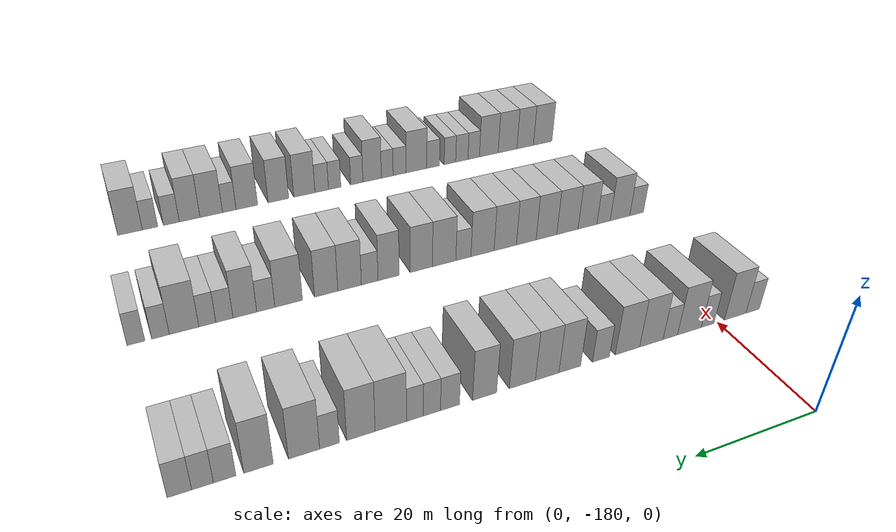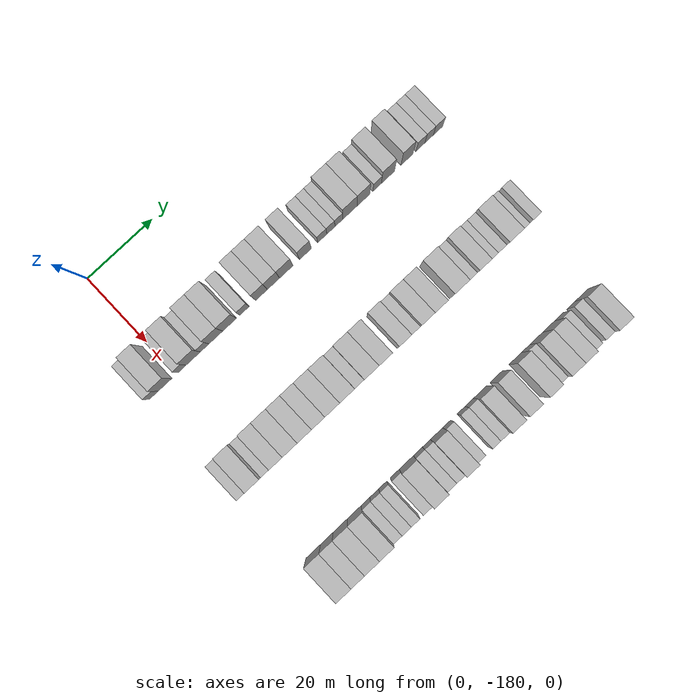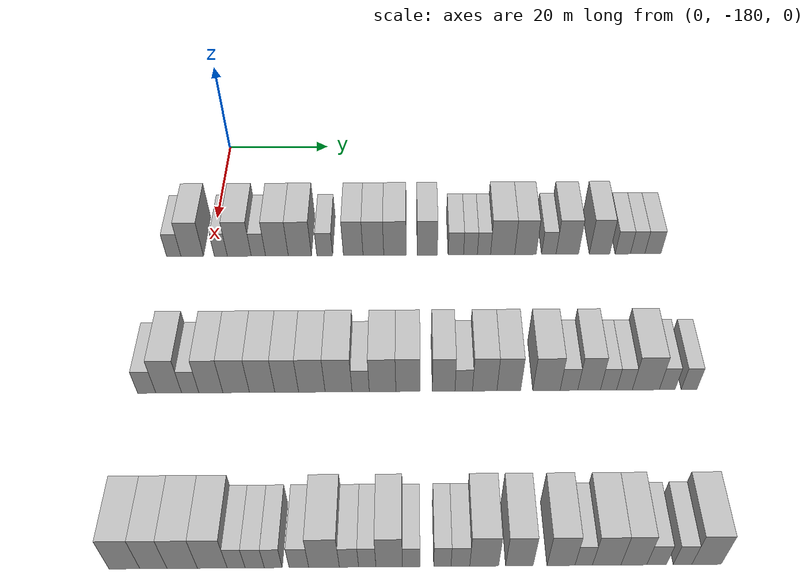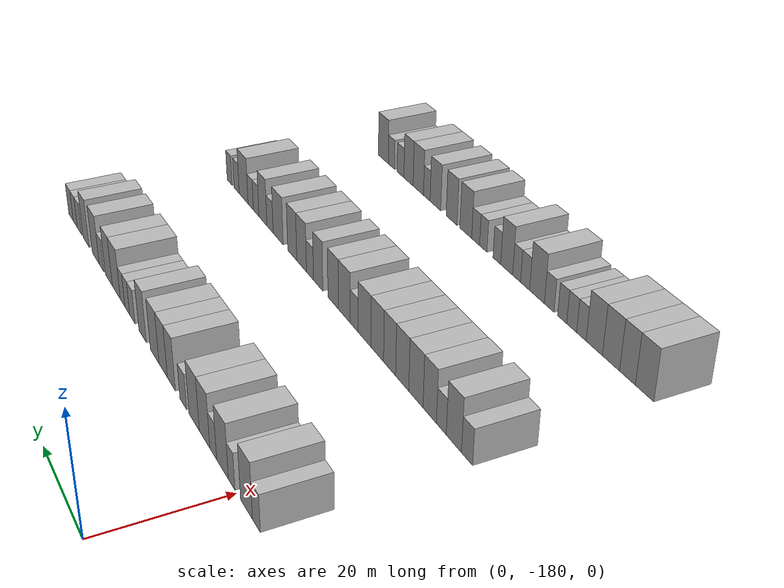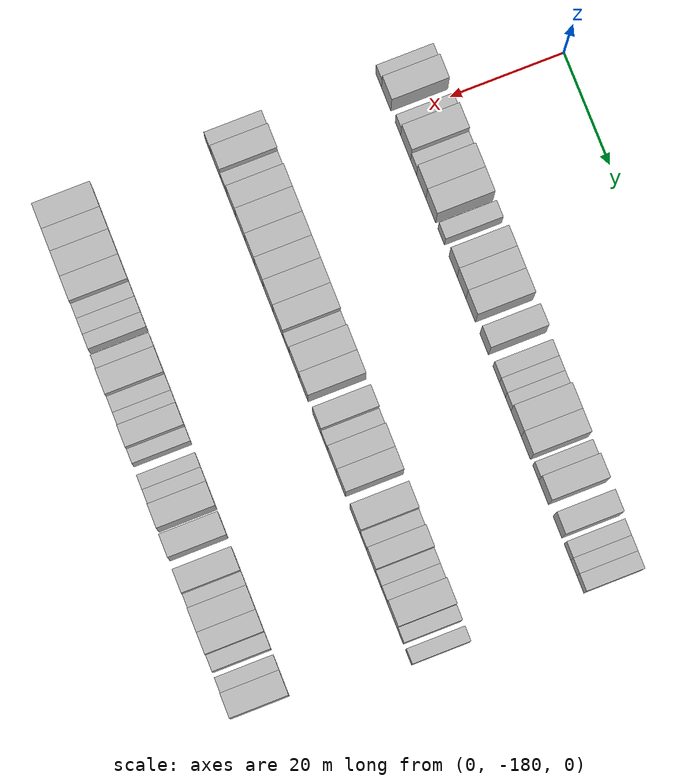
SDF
<sdf version="1.6">
 <world name="default">
  <model name="building_26">
   <static>1</static>
   <pose>25.0000 -186.8077 0 0.000000 0.000000 0.000000</pose>
   <link name="link">
    <pose>0 0 3.00 0 0 0</pose>
    <collision name="collision"><geometry><box><size>10.0000 2.6490 6.0000</size></box></geometry></collision>
    <visual name="visual">
     <cast_shadows>0</cast_shadows>
     <geometry><box><size>10.0000 2.6490 6.0000</size></box></geometry>
     <material>
      <script>
       <uri>model://HANNAS_wall/materials/scripts</uri>
       <uri>model://HANNAS_wall/materials/textures</uri>
       <name>vrc/HANNAS_wall</name>
      </script>
     </material>
    </visual>
   </link>
  </model>
  <model name="building_27">
   <static>1</static>
   <pose>25.0000 -183.4079 0 0.000000 0.000000 0.000000</pose>
   <link name="link">
    <pose>0 0 4.50 0 0 0</pose>
    <collision name="collision"><geometry><box><size>10.0000 4.1506 9.0000</size></box></geometry></collision>
    <visual name="visual">
     <cast_shadows>0</cast_shadows>
     <geometry><box><size>10.0000 4.1506 9.0000</size></box></geometry>
     <material>
      <script>
       <uri>model://HANNAS_wall/materials/scripts</uri>
       <uri>model://HANNAS_wall/materials/textures</uri>
       <name>vrc/HANNAS_wall</name>
      </script>
     </material>
    </visual>
   </link>
  </model>
  <model name="building_28">
   <static>1</static>
   <pose>25.0000 -178.1319 0 0.000000 0.000000 0.000000</pose>
   <link name="link">
    <pose>0 0 3.00 0 0 0</pose>
    <collision name="collision"><geometry><box><size>10.0000 2.4013 6.0000</size></box></geometry></collision>
    <visual name="visual">
     <cast_shadows>0</cast_shadows>
     <geometry><box><size>10.0000 2.4013 6.0000</size></box></geometry>
     <material>
      <script>
       <uri>model://HANNAS_wall/materials/scripts</uri>
       <uri>model://HANNAS_wall/materials/textures</uri>
       <name>vrc/HANNAS_wall</name>
      </script>
     </material>
    </visual>
   </link>
  </model>
  <model name="building_29">
   <static>1</static>
   <pose>25.0000 -174.7251 0 0.000000 0.000000 0.000000</pose>
   <link name="link">
    <pose>0 0 4.50 0 0 0</pose>
    <collision name="collision"><geometry><box><size>10.0000 4.4124 9.0000</size></box></geometry></collision>
    <visual name="visual">
     <cast_shadows>0</cast_shadows>
     <geometry><box><size>10.0000 4.4124 9.0000</size></box></geometry>
     <material>
      <script>
       <uri>model://HANNAS_wall/materials/scripts</uri>
       <uri>model://HANNAS_wall/materials/textures</uri>
       <name>vrc/HANNAS_wall</name>
      </script>
     </material>
    </visual>
   </link>
  </model>
  <model name="building_30">
   <static>1</static>
   <pose>25.0000 -171.2000 0 0.000000 0.000000 0.000000</pose>
   <link name="link">
    <pose>0 0 3.00 0 0 0</pose>
    <collision name="collision"><geometry><box><size>10.0000 2.6376 6.0000</size></box></geometry></collision>
    <visual name="visual">
     <cast_shadows>0</cast_shadows>
     <geometry><box><size>10.0000 2.6376 6.0000</size></box></geometry>
     <material>
      <script>
       <uri>model://HANNAS_wall/materials/scripts</uri>
       <uri>model://HANNAS_wall/materials/textures</uri>
       <name>vrc/HANNAS_wall</name>
      </script>
     </material>
    </visual>
   </link>
  </model>
  <model name="building_31">
   <static>1</static>
   <pose>25.0000 -167.7808 0 0.000000 0.000000 0.000000</pose>
   <link name="link">
    <pose>0 0 4.50 0 0 0</pose>
    <collision name="collision"><geometry><box><size>10.0000 4.2008 9.0000</size></box></geometry></collision>
    <visual name="visual">
     <cast_shadows>0</cast_shadows>
     <geometry><box><size>10.0000 4.2008 9.0000</size></box></geometry>
     <material>
      <script>
       <uri>model://HANNAS_wall/materials/scripts</uri>
       <uri>model://HANNAS_wall/materials/textures</uri>
       <name>vrc/HANNAS_wall</name>
      </script>
     </material>
    </visual>
   </link>
  </model>
  <model name="building_32">
   <static>1</static>
   <pose>25.0000 -163.5349 0 0.000000 0.000000 0.000000</pose>
   <link name="link">
    <pose>0 0 4.50 0 0 0</pose>
    <collision name="collision"><geometry><box><size>10.0000 4.2909 9.0000</size></box></geometry></collision>
    <visual name="visual">
     <cast_shadows>0</cast_shadows>
     <geometry><box><size>10.0000 4.2909 9.0000</size></box></geometry>
     <material>
      <script>
       <uri>model://HANNAS_wall/materials/scripts</uri>
       <uri>model://HANNAS_wall/materials/textures</uri>
       <name>vrc/HANNAS_wall</name>
      </script>
     </material>
    </visual>
   </link>
  </model>
  <model name="building_33">
   <static>1</static>
   <pose>25.0000 -158.9349 0 0.000000 0.000000 0.000000</pose>
   <link name="link">
    <pose>0 0 3.00 0 0 0</pose>
    <collision name="collision"><geometry><box><size>10.0000 2.9093 6.0000</size></box></geometry></collision>
    <visual name="visual">
     <cast_shadows>0</cast_shadows>
     <geometry><box><size>10.0000 2.9093 6.0000</size></box></geometry>
     <material>
      <script>
       <uri>model://HANNAS_wall/materials/scripts</uri>
       <uri>model://HANNAS_wall/materials/textures</uri>
       <name>vrc/HANNAS_wall</name>
      </script>
     </material>
    </visual>
   </link>
  </model>
  <model name="building_34">
   <static>1</static>
   <pose>25.0000 -153.6737 0 0.000000 0.000000 0.000000</pose>
   <link name="link">
    <pose>0 0 4.50 0 0 0</pose>
    <collision name="collision"><geometry><box><size>10.0000 3.6130 9.0000</size></box></geometry></collision>
    <visual name="visual">
     <cast_shadows>0</cast_shadows>
     <geometry><box><size>10.0000 3.6130 9.0000</size></box></geometry>
     <material>
      <script>
       <uri>model://HANNAS_wall/materials/scripts</uri>
       <uri>model://HANNAS_wall/materials/textures</uri>
       <name>vrc/HANNAS_wall</name>
      </script>
     </material>
    </visual>
   </link>
  </model>
  <model name="building_35">
   <static>1</static>
   <pose>25.0000 -149.9501 0 0.000000 0.000000 0.000000</pose>
   <link name="link">
    <pose>0 0 4.50 0 0 0</pose>
    <collision name="collision"><geometry><box><size>10.0000 3.8343 9.0000</size></box></geometry></collision>
    <visual name="visual">
     <cast_shadows>0</cast_shadows>
     <geometry><box><size>10.0000 3.8343 9.0000</size></box></geometry>
     <material>
      <script>
       <uri>model://HANNAS_wall/materials/scripts</uri>
       <uri>model://HANNAS_wall/materials/textures</uri>
       <name>vrc/HANNAS_wall</name>
      </script>
     </material>
    </visual>
   </link>
  </model>
  <model name="building_36">
   <static>1</static>
   <pose>25.0000 -145.9437 0 0.000000 0.000000 0.000000</pose>
   <link name="link">
    <pose>0 0 4.50 0 0 0</pose>
    <collision name="collision"><geometry><box><size>10.0000 4.1787 9.0000</size></box></geometry></collision>
    <visual name="visual">
     <cast_shadows>0</cast_shadows>
     <geometry><box><size>10.0000 4.1787 9.0000</size></box></geometry>
     <material>
      <script>
       <uri>model://HANNAS_wall/materials/scripts</uri>
       <uri>model://HANNAS_wall/materials/textures</uri>
       <name>vrc/HANNAS_wall</name>
      </script>
     </material>
    </visual>
   </link>
  </model>
  <model name="building_37">
   <static>1</static>
   <pose>25.0000 -139.9916 0 0.000000 0.000000 0.000000</pose>
   <link name="link">
    <pose>0 0 4.50 0 0 0</pose>
    <collision name="collision"><geometry><box><size>10.0000 3.7255 9.0000</size></box></geometry></collision>
    <visual name="visual">
     <cast_shadows>0</cast_shadows>
     <geometry><box><size>10.0000 3.7255 9.0000</size></box></geometry>
     <material>
      <script>
       <uri>model://HANNAS_wall/materials/scripts</uri>
       <uri>model://HANNAS_wall/materials/textures</uri>
       <name>vrc/HANNAS_wall</name>
      </script>
     </material>
    </visual>
   </link>
  </model>
  <model name="building_38">
   <static>1</static>
   <pose>25.0000 -134.7000 0 0.000000 0.000000 0.000000</pose>
   <link name="link">
    <pose>0 0 3.00 0 0 0</pose>
    <collision name="collision"><geometry><box><size>10.0000 2.8577 6.0000</size></box></geometry></collision>
    <visual name="visual">
     <cast_shadows>0</cast_shadows>
     <geometry><box><size>10.0000 2.8577 6.0000</size></box></geometry>
     <material>
      <script>
       <uri>model://HANNAS_wall/materials/scripts</uri>
       <uri>model://HANNAS_wall/materials/textures</uri>
       <name>vrc/HANNAS_wall</name>
      </script>
     </material>
    </visual>
   </link>
  </model>
  <model name="building_39">
   <static>1</static>
   <pose>25.0000 -131.9935 0 0.000000 0.000000 0.000000</pose>
   <link name="link">
    <pose>0 0 3.00 0 0 0</pose>
    <collision name="collision"><geometry><box><size>10.0000 2.5553 6.0000</size></box></geometry></collision>
    <visual name="visual">
     <cast_shadows>0</cast_shadows>
     <geometry><box><size>10.0000 2.5553 6.0000</size></box></geometry>
     <material>
      <script>
       <uri>model://HANNAS_wall/materials/scripts</uri>
       <uri>model://HANNAS_wall/materials/textures</uri>
       <name>vrc/HANNAS_wall</name>
      </script>
     </material>
    </visual>
   </link>
  </model>
  <model name="building_40">
   <static>1</static>
   <pose>25.0000 -129.4904 0 0.000000 0.000000 0.000000</pose>
   <link name="link">
    <pose>0 0 3.00 0 0 0</pose>
    <collision name="collision"><geometry><box><size>10.0000 2.4510 6.0000</size></box></geometry></collision>
    <visual name="visual">
     <cast_shadows>0</cast_shadows>
     <geometry><box><size>10.0000 2.4510 6.0000</size></box></geometry>
     <material>
      <script>
       <uri>model://HANNAS_wall/materials/scripts</uri>
       <uri>model://HANNAS_wall/materials/textures</uri>
       <name>vrc/HANNAS_wall</name>
      </script>
     </material>
    </visual>
   </link>
  </model>
  <model name="building_41">
   <static>1</static>
   <pose>25.0000 -126.0280 0 0.000000 0.000000 0.000000</pose>
   <link name="link">
    <pose>0 0 4.50 0 0 0</pose>
    <collision name="collision"><geometry><box><size>10.0000 4.4737 9.0000</size></box></geometry></collision>
    <visual name="visual">
     <cast_shadows>0</cast_shadows>
     <geometry><box><size>10.0000 4.4737 9.0000</size></box></geometry>
     <material>
      <script>
       <uri>model://HANNAS_wall/materials/scripts</uri>
       <uri>model://HANNAS_wall/materials/textures</uri>
       <name>vrc/HANNAS_wall</name>
      </script>
     </material>
    </visual>
   </link>
  </model>
  <model name="building_42">
   <static>1</static>
   <pose>25.0000 -121.8029 0 0.000000 0.000000 0.000000</pose>
   <link name="link">
    <pose>0 0 4.50 0 0 0</pose>
    <collision name="collision"><geometry><box><size>10.0000 3.9766 9.0000</size></box></geometry></collision>
    <visual name="visual">
     <cast_shadows>0</cast_shadows>
     <geometry><box><size>10.0000 3.9766 9.0000</size></box></geometry>
     <material>
      <script>
       <uri>model://HANNAS_wall/materials/scripts</uri>
       <uri>model://HANNAS_wall/materials/textures</uri>
       <name>vrc/HANNAS_wall</name>
      </script>
     </material>
    </visual>
   </link>
  </model>
  <model name="building_43">
   <static>1</static>
   <pose>25.0000 -117.4741 0 0.000000 0.000000 0.000000</pose>
   <link name="link">
    <pose>0 0 3.00 0 0 0</pose>
    <collision name="collision"><geometry><box><size>10.0000 2.6810 6.0000</size></box></geometry></collision>
    <visual name="visual">
     <cast_shadows>0</cast_shadows>
     <geometry><box><size>10.0000 2.6810 6.0000</size></box></geometry>
     <material>
      <script>
       <uri>model://HANNAS_wall/materials/scripts</uri>
       <uri>model://HANNAS_wall/materials/textures</uri>
       <name>vrc/HANNAS_wall</name>
      </script>
     </material>
    </visual>
   </link>
  </model>
  <model name="building_44">
   <static>1</static>
   <pose>25.0000 -114.0489 0 0.000000 0.000000 0.000000</pose>
   <link name="link">
    <pose>0 0 4.50 0 0 0</pose>
    <collision name="collision"><geometry><box><size>10.0000 4.1696 9.0000</size></box></geometry></collision>
    <visual name="visual">
     <cast_shadows>0</cast_shadows>
     <geometry><box><size>10.0000 4.1696 9.0000</size></box></geometry>
     <material>
      <script>
       <uri>model://HANNAS_wall/materials/scripts</uri>
       <uri>model://HANNAS_wall/materials/textures</uri>
       <name>vrc/HANNAS_wall</name>
      </script>
     </material>
    </visual>
   </link>
  </model>
  <model name="building_45">
   <static>1</static>
   <pose>25.0000 -108.0677 0 0.000000 0.000000 0.000000</pose>
   <link name="link">
    <pose>0 0 4.50 0 0 0</pose>
    <collision name="collision"><geometry><box><size>10.0000 3.7928 9.0000</size></box></geometry></collision>
    <visual name="visual">
     <cast_shadows>0</cast_shadows>
     <geometry><box><size>10.0000 3.7928 9.0000</size></box></geometry>
     <material>
      <script>
       <uri>model://HANNAS_wall/materials/scripts</uri>
       <uri>model://HANNAS_wall/materials/textures</uri>
       <name>vrc/HANNAS_wall</name>
      </script>
     </material>
    </visual>
   </link>
  </model>
  <model name="building_46">
   <static>1</static>
   <pose>25.0000 -103.7559 0 0.000000 0.000000 0.000000</pose>
   <link name="link">
    <pose>0 0 3.00 0 0 0</pose>
    <collision name="collision"><geometry><box><size>10.0000 2.8308 6.0000</size></box></geometry></collision>
    <visual name="visual">
     <cast_shadows>0</cast_shadows>
     <geometry><box><size>10.0000 2.8308 6.0000</size></box></geometry>
     <material>
      <script>
       <uri>model://HANNAS_wall/materials/scripts</uri>
       <uri>model://HANNAS_wall/materials/textures</uri>
       <name>vrc/HANNAS_wall</name>
      </script>
     </material>
    </visual>
   </link>
  </model>
  <model name="building_47">
   <static>1</static>
   <pose>25.0000 -101.0030 0 0.000000 0.000000 0.000000</pose>
   <link name="link">
    <pose>0 0 3.00 0 0 0</pose>
    <collision name="collision"><geometry><box><size>10.0000 2.6751 6.0000</size></box></geometry></collision>
    <visual name="visual">
     <cast_shadows>0</cast_shadows>
     <geometry><box><size>10.0000 2.6751 6.0000</size></box></geometry>
     <material>
      <script>
       <uri>model://HANNAS_wall/materials/scripts</uri>
       <uri>model://HANNAS_wall/materials/textures</uri>
       <name>vrc/HANNAS_wall</name>
      </script>
     </material>
    </visual>
   </link>
  </model>
  <model name="building_48">
   <static>1</static>
   <pose>25.0000 -98.1678 0 0.000000 0.000000 0.000000</pose>
   <link name="link">
    <pose>0 0 3.00 0 0 0</pose>
    <collision name="collision"><geometry><box><size>10.0000 2.9954 6.0000</size></box></geometry></collision>
    <visual name="visual">
     <cast_shadows>0</cast_shadows>
     <geometry><box><size>10.0000 2.9954 6.0000</size></box></geometry>
     <material>
      <script>
       <uri>model://HANNAS_wall/materials/scripts</uri>
       <uri>model://HANNAS_wall/materials/textures</uri>
       <name>vrc/HANNAS_wall</name>
      </script>
     </material>
    </visual>
   </link>
  </model>
  <model name="building_167">
   <static>1</static>
   <pose>55.0000 -186.5059 0 0.000000 0.000000 0.000000</pose>
   <link name="link">
    <pose>0 0 3.00 0 0 0</pose>
    <collision name="collision"><geometry><box><size>10.0000 2.9878 6.0000</size></box></geometry></collision>
    <visual name="visual">
     <cast_shadows>0</cast_shadows>
     <geometry><box><size>10.0000 2.9878 6.0000</size></box></geometry>
     <material>
      <script>
       <uri>model://HANNAS_wall/materials/scripts</uri>
       <uri>model://HANNAS_wall/materials/textures</uri>
       <name>vrc/HANNAS_wall</name>
      </script>
     </material>
    </visual>
   </link>
  </model>
  <model name="building_168">
   <static>1</static>
   <pose>55.0000 -182.9022 0 0.000000 0.000000 0.000000</pose>
   <link name="link">
    <pose>0 0 4.50 0 0 0</pose>
    <collision name="collision"><geometry><box><size>10.0000 4.2195 9.0000</size></box></geometry></collision>
    <visual name="visual">
     <cast_shadows>0</cast_shadows>
     <geometry><box><size>10.0000 4.2195 9.0000</size></box></geometry>
     <material>
      <script>
       <uri>model://HANNAS_wall/materials/scripts</uri>
       <uri>model://HANNAS_wall/materials/textures</uri>
       <name>vrc/HANNAS_wall</name>
      </script>
     </material>
    </visual>
   </link>
  </model>
  <model name="building_169">
   <static>1</static>
   <pose>55.0000 -179.3797 0 0.000000 0.000000 0.000000</pose>
   <link name="link">
    <pose>0 0 3.00 0 0 0</pose>
    <collision name="collision"><geometry><box><size>10.0000 2.8256 6.0000</size></box></geometry></collision>
    <visual name="visual">
     <cast_shadows>0</cast_shadows>
     <geometry><box><size>10.0000 2.8256 6.0000</size></box></geometry>
     <material>
      <script>
       <uri>model://HANNAS_wall/materials/scripts</uri>
       <uri>model://HANNAS_wall/materials/textures</uri>
       <name>vrc/HANNAS_wall</name>
      </script>
     </material>
    </visual>
   </link>
  </model>
  <model name="building_170">
   <static>1</static>
   <pose>55.0000 -175.9947 0 0.000000 0.000000 0.000000</pose>
   <link name="link">
    <pose>0 0 4.50 0 0 0</pose>
    <collision name="collision"><geometry><box><size>10.0000 3.9444 9.0000</size></box></geometry></collision>
    <visual name="visual">
     <cast_shadows>0</cast_shadows>
     <geometry><box><size>10.0000 3.9444 9.0000</size></box></geometry>
     <material>
      <script>
       <uri>model://HANNAS_wall/materials/scripts</uri>
       <uri>model://HANNAS_wall/materials/textures</uri>
       <name>vrc/HANNAS_wall</name>
      </script>
     </material>
    </visual>
   </link>
  </model>
  <model name="building_171">
   <static>1</static>
   <pose>55.0000 -171.8400 0 0.000000 0.000000 0.000000</pose>
   <link name="link">
    <pose>0 0 4.50 0 0 0</pose>
    <collision name="collision"><geometry><box><size>10.0000 4.3650 9.0000</size></box></geometry></collision>
    <visual name="visual">
     <cast_shadows>0</cast_shadows>
     <geometry><box><size>10.0000 4.3650 9.0000</size></box></geometry>
     <material>
      <script>
       <uri>model://HANNAS_wall/materials/scripts</uri>
       <uri>model://HANNAS_wall/materials/textures</uri>
       <name>vrc/HANNAS_wall</name>
      </script>
     </material>
    </visual>
   </link>
  </model>
  <model name="building_172">
   <static>1</static>
   <pose>55.0000 -167.5754 0 0.000000 0.000000 0.000000</pose>
   <link name="link">
    <pose>0 0 4.50 0 0 0</pose>
    <collision name="collision"><geometry><box><size>10.0000 4.1642 9.0000</size></box></geometry></collision>
    <visual name="visual">
     <cast_shadows>0</cast_shadows>
     <geometry><box><size>10.0000 4.1642 9.0000</size></box></geometry>
     <material>
      <script>
       <uri>model://HANNAS_wall/materials/scripts</uri>
       <uri>model://HANNAS_wall/materials/textures</uri>
       <name>vrc/HANNAS_wall</name>
      </script>
     </material>
    </visual>
   </link>
  </model>
  <model name="building_173">
   <static>1</static>
   <pose>55.0000 -163.5399 0 0.000000 0.000000 0.000000</pose>
   <link name="link">
    <pose>0 0 4.50 0 0 0</pose>
    <collision name="collision"><geometry><box><size>10.0000 3.9069 9.0000</size></box></geometry></collision>
    <visual name="visual">
     <cast_shadows>0</cast_shadows>
     <geometry><box><size>10.0000 3.9069 9.0000</size></box></geometry>
     <material>
      <script>
       <uri>model://HANNAS_wall/materials/scripts</uri>
       <uri>model://HANNAS_wall/materials/textures</uri>
       <name>vrc/HANNAS_wall</name>
      </script>
     </material>
    </visual>
   </link>
  </model>
  <model name="building_174">
   <static>1</static>
   <pose>55.0000 -159.4107 0 0.000000 0.000000 0.000000</pose>
   <link name="link">
    <pose>0 0 4.50 0 0 0</pose>
    <collision name="collision"><geometry><box><size>10.0000 4.3513 9.0000</size></box></geometry></collision>
    <visual name="visual">
     <cast_shadows>0</cast_shadows>
     <geometry><box><size>10.0000 4.3513 9.0000</size></box></geometry>
     <material>
      <script>
       <uri>model://HANNAS_wall/materials/scripts</uri>
       <uri>model://HANNAS_wall/materials/textures</uri>
       <name>vrc/HANNAS_wall</name>
      </script>
     </material>
    </visual>
   </link>
  </model>
  <model name="building_175">
   <static>1</static>
   <pose>55.0000 -155.0255 0 0.000000 0.000000 0.000000</pose>
   <link name="link">
    <pose>0 0 4.50 0 0 0</pose>
    <collision name="collision"><geometry><box><size>10.0000 4.4191 9.0000</size></box></geometry></collision>
    <visual name="visual">
     <cast_shadows>0</cast_shadows>
     <geometry><box><size>10.0000 4.4191 9.0000</size></box></geometry>
     <material>
      <script>
       <uri>model://HANNAS_wall/materials/scripts</uri>
       <uri>model://HANNAS_wall/materials/textures</uri>
       <name>vrc/HANNAS_wall</name>
      </script>
     </material>
    </visual>
   </link>
  </model>
  <model name="building_176">
   <static>1</static>
   <pose>55.0000 -151.3942 0 0.000000 0.000000 0.000000</pose>
   <link name="link">
    <pose>0 0 3.00 0 0 0</pose>
    <collision name="collision"><geometry><box><size>10.0000 2.8435 6.0000</size></box></geometry></collision>
    <visual name="visual">
     <cast_shadows>0</cast_shadows>
     <geometry><box><size>10.0000 2.8435 6.0000</size></box></geometry>
     <material>
      <script>
       <uri>model://HANNAS_wall/materials/scripts</uri>
       <uri>model://HANNAS_wall/materials/textures</uri>
       <name>vrc/HANNAS_wall</name>
      </script>
     </material>
    </visual>
   </link>
  </model>
  <model name="building_177">
   <static>1</static>
   <pose>55.0000 -147.7896 0 0.000000 0.000000 0.000000</pose>
   <link name="link">
    <pose>0 0 4.50 0 0 0</pose>
    <collision name="collision"><geometry><box><size>10.0000 4.3657 9.0000</size></box></geometry></collision>
    <visual name="visual">
     <cast_shadows>0</cast_shadows>
     <geometry><box><size>10.0000 4.3657 9.0000</size></box></geometry>
     <material>
      <script>
       <uri>model://HANNAS_wall/materials/scripts</uri>
       <uri>model://HANNAS_wall/materials/textures</uri>
       <name>vrc/HANNAS_wall</name>
      </script>
     </material>
    </visual>
   </link>
  </model>
  <model name="building_178">
   <static>1</static>
   <pose>55.0000 -143.6169 0 0.000000 0.000000 0.000000</pose>
   <link name="link">
    <pose>0 0 4.50 0 0 0</pose>
    <collision name="collision"><geometry><box><size>10.0000 3.9798 9.0000</size></box></geometry></collision>
    <visual name="visual">
     <cast_shadows>0</cast_shadows>
     <geometry><box><size>10.0000 3.9798 9.0000</size></box></geometry>
     <material>
      <script>
       <uri>model://HANNAS_wall/materials/scripts</uri>
       <uri>model://HANNAS_wall/materials/textures</uri>
       <name>vrc/HANNAS_wall</name>
      </script>
     </material>
    </visual>
   </link>
  </model>
  <model name="building_179">
   <static>1</static>
   <pose>55.0000 -137.7647 0 0.000000 0.000000 0.000000</pose>
   <link name="link">
    <pose>0 0 4.50 0 0 0</pose>
    <collision name="collision"><geometry><box><size>10.0000 3.7246 9.0000</size></box></geometry></collision>
    <visual name="visual">
     <cast_shadows>0</cast_shadows>
     <geometry><box><size>10.0000 3.7246 9.0000</size></box></geometry>
     <material>
      <script>
       <uri>model://HANNAS_wall/materials/scripts</uri>
       <uri>model://HANNAS_wall/materials/textures</uri>
       <name>vrc/HANNAS_wall</name>
      </script>
     </material>
    </visual>
   </link>
  </model>
  <model name="building_180">
   <static>1</static>
   <pose>55.0000 -134.4614 0 0.000000 0.000000 0.000000</pose>
   <link name="link">
    <pose>0 0 3.00 0 0 0</pose>
    <collision name="collision"><geometry><box><size>10.0000 2.8820 6.0000</size></box></geometry></collision>
    <visual name="visual">
     <cast_shadows>0</cast_shadows>
     <geometry><box><size>10.0000 2.8820 6.0000</size></box></geometry>
     <material>
      <script>
       <uri>model://HANNAS_wall/materials/scripts</uri>
       <uri>model://HANNAS_wall/materials/textures</uri>
       <name>vrc/HANNAS_wall</name>
      </script>
     </material>
    </visual>
   </link>
  </model>
  <model name="building_181">
   <static>1</static>
   <pose>55.0000 -131.0078 0 0.000000 0.000000 0.000000</pose>
   <link name="link">
    <pose>0 0 4.50 0 0 0</pose>
    <collision name="collision"><geometry><box><size>10.0000 4.0253 9.0000</size></box></geometry></collision>
    <visual name="visual">
     <cast_shadows>0</cast_shadows>
     <geometry><box><size>10.0000 4.0253 9.0000</size></box></geometry>
     <material>
      <script>
       <uri>model://HANNAS_wall/materials/scripts</uri>
       <uri>model://HANNAS_wall/materials/textures</uri>
       <name>vrc/HANNAS_wall</name>
      </script>
     </material>
    </visual>
   </link>
  </model>
  <model name="building_182">
   <static>1</static>
   <pose>55.0000 -127.0380 0 0.000000 0.000000 0.000000</pose>
   <link name="link">
    <pose>0 0 4.50 0 0 0</pose>
    <collision name="collision"><geometry><box><size>10.0000 3.9142 9.0000</size></box></geometry></collision>
    <visual name="visual">
     <cast_shadows>0</cast_shadows>
     <geometry><box><size>10.0000 3.9142 9.0000</size></box></geometry>
     <material>
      <script>
       <uri>model://HANNAS_wall/materials/scripts</uri>
       <uri>model://HANNAS_wall/materials/textures</uri>
       <name>vrc/HANNAS_wall</name>
      </script>
     </material>
    </visual>
   </link>
  </model>
  <model name="building_183">
   <static>1</static>
   <pose>55.0000 -120.8321 0 0.000000 0.000000 0.000000</pose>
   <link name="link">
    <pose>0 0 4.50 0 0 0</pose>
    <collision name="collision"><geometry><box><size>10.0000 4.4977 9.0000</size></box></geometry></collision>
    <visual name="visual">
     <cast_shadows>0</cast_shadows>
     <geometry><box><size>10.0000 4.4977 9.0000</size></box></geometry>
     <material>
      <script>
       <uri>model://HANNAS_wall/materials/scripts</uri>
       <uri>model://HANNAS_wall/materials/textures</uri>
       <name>vrc/HANNAS_wall</name>
      </script>
     </material>
    </visual>
   </link>
  </model>
  <model name="building_184">
   <static>1</static>
   <pose>55.0000 -117.1335 0 0.000000 0.000000 0.000000</pose>
   <link name="link">
    <pose>0 0 3.00 0 0 0</pose>
    <collision name="collision"><geometry><box><size>10.0000 2.8994 6.0000</size></box></geometry></collision>
    <visual name="visual">
     <cast_shadows>0</cast_shadows>
     <geometry><box><size>10.0000 2.8994 6.0000</size></box></geometry>
     <material>
      <script>
       <uri>model://HANNAS_wall/materials/scripts</uri>
       <uri>model://HANNAS_wall/materials/textures</uri>
       <name>vrc/HANNAS_wall</name>
      </script>
     </material>
    </visual>
   </link>
  </model>
  <model name="building_185">
   <static>1</static>
   <pose>55.0000 -113.8133 0 0.000000 0.000000 0.000000</pose>
   <link name="link">
    <pose>0 0 4.50 0 0 0</pose>
    <collision name="collision"><geometry><box><size>10.0000 3.7410 9.0000</size></box></geometry></collision>
    <visual name="visual">
     <cast_shadows>0</cast_shadows>
     <geometry><box><size>10.0000 3.7410 9.0000</size></box></geometry>
     <material>
      <script>
       <uri>model://HANNAS_wall/materials/scripts</uri>
       <uri>model://HANNAS_wall/materials/textures</uri>
       <name>vrc/HANNAS_wall</name>
      </script>
     </material>
    </visual>
   </link>
  </model>
  <model name="building_186">
   <static>1</static>
   <pose>55.0000 -110.6123 0 0.000000 0.000000 0.000000</pose>
   <link name="link">
    <pose>0 0 3.00 0 0 0</pose>
    <collision name="collision"><geometry><box><size>10.0000 2.6611 6.0000</size></box></geometry></collision>
    <visual name="visual">
     <cast_shadows>0</cast_shadows>
     <geometry><box><size>10.0000 2.6611 6.0000</size></box></geometry>
     <material>
      <script>
       <uri>model://HANNAS_wall/materials/scripts</uri>
       <uri>model://HANNAS_wall/materials/textures</uri>
       <name>vrc/HANNAS_wall</name>
      </script>
     </material>
    </visual>
   </link>
  </model>
  <model name="building_187">
   <static>1</static>
   <pose>55.0000 -107.9812 0 0.000000 0.000000 0.000000</pose>
   <link name="link">
    <pose>0 0 3.00 0 0 0</pose>
    <collision name="collision"><geometry><box><size>10.0000 2.6011 6.0000</size></box></geometry></collision>
    <visual name="visual">
     <cast_shadows>0</cast_shadows>
     <geometry><box><size>10.0000 2.6011 6.0000</size></box></geometry>
     <material>
      <script>
       <uri>model://HANNAS_wall/materials/scripts</uri>
       <uri>model://HANNAS_wall/materials/textures</uri>
       <name>vrc/HANNAS_wall</name>
      </script>
     </material>
    </visual>
   </link>
  </model>
  <model name="building_188">
   <static>1</static>
   <pose>55.0000 -104.4562 0 0.000000 0.000000 0.000000</pose>
   <link name="link">
    <pose>0 0 4.50 0 0 0</pose>
    <collision name="collision"><geometry><box><size>10.0000 4.4488 9.0000</size></box></geometry></collision>
    <visual name="visual">
     <cast_shadows>0</cast_shadows>
     <geometry><box><size>10.0000 4.4488 9.0000</size></box></geometry>
     <material>
      <script>
       <uri>model://HANNAS_wall/materials/scripts</uri>
       <uri>model://HANNAS_wall/materials/textures</uri>
       <name>vrc/HANNAS_wall</name>
      </script>
     </material>
    </visual>
   </link>
  </model>
  <model name="building_189">
   <static>1</static>
   <pose>55.0000 -100.9292 0 0.000000 0.000000 0.000000</pose>
   <link name="link">
    <pose>0 0 3.00 0 0 0</pose>
    <collision name="collision"><geometry><box><size>10.0000 2.6051 6.0000</size></box></geometry></collision>
    <visual name="visual">
     <cast_shadows>0</cast_shadows>
     <geometry><box><size>10.0000 2.6051 6.0000</size></box></geometry>
     <material>
      <script>
       <uri>model://HANNAS_wall/materials/scripts</uri>
       <uri>model://HANNAS_wall/materials/textures</uri>
       <name>vrc/HANNAS_wall</name>
      </script>
     </material>
    </visual>
   </link>
  </model>
  <model name="building_190">
   <static>1</static>
   <pose>55.0000 -97.3282 0 0.000000 0.000000 0.000000</pose>
   <link name="link">
    <pose>0 0 3.00 0 0 0</pose>
    <collision name="collision"><geometry><box><size>10.0000 2.5970 6.0000</size></box></geometry></collision>
    <visual name="visual">
     <cast_shadows>0</cast_shadows>
     <geometry><box><size>10.0000 2.5970 6.0000</size></box></geometry>
     <material>
      <script>
       <uri>model://HANNAS_wall/materials/scripts</uri>
       <uri>model://HANNAS_wall/materials/textures</uri>
       <name>vrc/HANNAS_wall</name>
      </script>
     </material>
    </visual>
   </link>
  </model>
  <model name="building_313">
   <static>1</static>
   <pose>85.0000 -184.4066 0 0.000000 0.000000 0.000000</pose>
   <link name="link">
    <pose>0 0 4.50 0 0 0</pose>
    <collision name="collision"><geometry><box><size>10.0000 4.4180 9.0000</size></box></geometry></collision>
    <visual name="visual">
     <cast_shadows>0</cast_shadows>
     <geometry><box><size>10.0000 4.4180 9.0000</size></box></geometry>
     <material>
      <script>
       <uri>model://HANNAS_wall/materials/scripts</uri>
       <uri>model://HANNAS_wall/materials/textures</uri>
       <name>vrc/HANNAS_wall</name>
      </script>
     </material>
    </visual>
   </link>
  </model>
  <model name="building_314">
   <static>1</static>
   <pose>85.0000 -180.2527 0 0.000000 0.000000 0.000000</pose>
   <link name="link">
    <pose>0 0 4.50 0 0 0</pose>
    <collision name="collision"><geometry><box><size>10.0000 3.8898 9.0000</size></box></geometry></collision>
    <visual name="visual">
     <cast_shadows>0</cast_shadows>
     <geometry><box><size>10.0000 3.8898 9.0000</size></box></geometry>
     <material>
      <script>
       <uri>model://HANNAS_wall/materials/scripts</uri>
       <uri>model://HANNAS_wall/materials/textures</uri>
       <name>vrc/HANNAS_wall</name>
      </script>
     </material>
    </visual>
   </link>
  </model>
  <model name="building_315">
   <static>1</static>
   <pose>85.0000 -176.1225 0 0.000000 0.000000 0.000000</pose>
   <link name="link">
    <pose>0 0 4.50 0 0 0</pose>
    <collision name="collision"><geometry><box><size>10.0000 4.3707 9.0000</size></box></geometry></collision>
    <visual name="visual">
     <cast_shadows>0</cast_shadows>
     <geometry><box><size>10.0000 4.3707 9.0000</size></box></geometry>
     <material>
      <script>
       <uri>model://HANNAS_wall/materials/scripts</uri>
       <uri>model://HANNAS_wall/materials/textures</uri>
       <name>vrc/HANNAS_wall</name>
      </script>
     </material>
    </visual>
   </link>
  </model>
  <model name="building_316">
   <static>1</static>
   <pose>85.0000 -171.7977 0 0.000000 0.000000 0.000000</pose>
   <link name="link">
    <pose>0 0 4.50 0 0 0</pose>
    <collision name="collision"><geometry><box><size>10.0000 4.2789 9.0000</size></box></geometry></collision>
    <visual name="visual">
     <cast_shadows>0</cast_shadows>
     <geometry><box><size>10.0000 4.2789 9.0000</size></box></geometry>
     <material>
      <script>
       <uri>model://HANNAS_wall/materials/scripts</uri>
       <uri>model://HANNAS_wall/materials/textures</uri>
       <name>vrc/HANNAS_wall</name>
      </script>
     </material>
    </visual>
   </link>
  </model>
  <model name="building_317">
   <static>1</static>
   <pose>85.0000 -168.3667 0 0.000000 0.000000 0.000000</pose>
   <link name="link">
    <pose>0 0 3.00 0 0 0</pose>
    <collision name="collision"><geometry><box><size>10.0000 2.5830 6.0000</size></box></geometry></collision>
    <visual name="visual">
     <cast_shadows>0</cast_shadows>
     <geometry><box><size>10.0000 2.5830 6.0000</size></box></geometry>
     <material>
      <script>
       <uri>model://HANNAS_wall/materials/scripts</uri>
       <uri>model://HANNAS_wall/materials/textures</uri>
       <name>vrc/HANNAS_wall</name>
      </script>
     </material>
    </visual>
   </link>
  </model>
  <model name="building_318">
   <static>1</static>
   <pose>85.0000 -165.7045 0 0.000000 0.000000 0.000000</pose>
   <link name="link">
    <pose>0 0 3.00 0 0 0</pose>
    <collision name="collision"><geometry><box><size>10.0000 2.7415 6.0000</size></box></geometry></collision>
    <visual name="visual">
     <cast_shadows>0</cast_shadows>
     <geometry><box><size>10.0000 2.7415 6.0000</size></box></geometry>
     <material>
      <script>
       <uri>model://HANNAS_wall/materials/scripts</uri>
       <uri>model://HANNAS_wall/materials/textures</uri>
       <name>vrc/HANNAS_wall</name>
      </script>
     </material>
    </visual>
   </link>
  </model>
  <model name="building_319">
   <static>1</static>
   <pose>85.0000 -163.0470 0 0.000000 0.000000 0.000000</pose>
   <link name="link">
    <pose>0 0 3.00 0 0 0</pose>
    <collision name="collision"><geometry><box><size>10.0000 2.5734 6.0000</size></box></geometry></collision>
    <visual name="visual">
     <cast_shadows>0</cast_shadows>
     <geometry><box><size>10.0000 2.5734 6.0000</size></box></geometry>
     <material>
      <script>
       <uri>model://HANNAS_wall/materials/scripts</uri>
       <uri>model://HANNAS_wall/materials/textures</uri>
       <name>vrc/HANNAS_wall</name>
      </script>
     </material>
    </visual>
   </link>
  </model>
  <model name="building_320">
   <static>1</static>
   <pose>85.0000 -159.3577 0 0.000000 0.000000 0.000000</pose>
   <link name="link">
    <pose>0 0 3.00 0 0 0</pose>
    <collision name="collision"><geometry><box><size>10.0000 2.8051 6.0000</size></box></geometry></collision>
    <visual name="visual">
     <cast_shadows>0</cast_shadows>
     <geometry><box><size>10.0000 2.8051 6.0000</size></box></geometry>
     <material>
      <script>
       <uri>model://HANNAS_wall/materials/scripts</uri>
       <uri>model://HANNAS_wall/materials/textures</uri>
       <name>vrc/HANNAS_wall</name>
      </script>
     </material>
    </visual>
   </link>
  </model>
  <model name="building_321">
   <static>1</static>
   <pose>85.0000 -155.7549 0 0.000000 0.000000 0.000000</pose>
   <link name="link">
    <pose>0 0 4.50 0 0 0</pose>
    <collision name="collision"><geometry><box><size>10.0000 4.4004 9.0000</size></box></geometry></collision>
    <visual name="visual">
     <cast_shadows>0</cast_shadows>
     <geometry><box><size>10.0000 4.4004 9.0000</size></box></geometry>
     <material>
      <script>
       <uri>model://HANNAS_wall/materials/scripts</uri>
       <uri>model://HANNAS_wall/materials/textures</uri>
       <name>vrc/HANNAS_wall</name>
      </script>
     </material>
    </visual>
   </link>
  </model>
  <model name="building_322">
   <static>1</static>
   <pose>85.0000 -152.1681 0 0.000000 0.000000 0.000000</pose>
   <link name="link">
    <pose>0 0 3.00 0 0 0</pose>
    <collision name="collision"><geometry><box><size>10.0000 2.7733 6.0000</size></box></geometry></collision>
    <visual name="visual">
     <cast_shadows>0</cast_shadows>
     <geometry><box><size>10.0000 2.7733 6.0000</size></box></geometry>
     <material>
      <script>
       <uri>model://HANNAS_wall/materials/scripts</uri>
       <uri>model://HANNAS_wall/materials/textures</uri>
       <name>vrc/HANNAS_wall</name>
      </script>
     </material>
    </visual>
   </link>
  </model>
  <model name="building_323">
   <static>1</static>
   <pose>85.0000 -149.5393 0 0.000000 0.000000 0.000000</pose>
   <link name="link">
    <pose>0 0 3.00 0 0 0</pose>
    <collision name="collision"><geometry><box><size>10.0000 2.4843 6.0000</size></box></geometry></collision>
    <visual name="visual">
     <cast_shadows>0</cast_shadows>
     <geometry><box><size>10.0000 2.4843 6.0000</size></box></geometry>
     <material>
      <script>
       <uri>model://HANNAS_wall/materials/scripts</uri>
       <uri>model://HANNAS_wall/materials/textures</uri>
       <name>vrc/HANNAS_wall</name>
      </script>
     </material>
    </visual>
   </link>
  </model>
  <model name="building_324">
   <static>1</static>
   <pose>85.0000 -146.3908 0 0.000000 0.000000 0.000000</pose>
   <link name="link">
    <pose>0 0 4.50 0 0 0</pose>
    <collision name="collision"><geometry><box><size>10.0000 3.8126 9.0000</size></box></geometry></collision>
    <visual name="visual">
     <cast_shadows>0</cast_shadows>
     <geometry><box><size>10.0000 3.8126 9.0000</size></box></geometry>
     <material>
      <script>
       <uri>model://HANNAS_wall/materials/scripts</uri>
       <uri>model://HANNAS_wall/materials/textures</uri>
       <name>vrc/HANNAS_wall</name>
      </script>
     </material>
    </visual>
   </link>
  </model>
  <model name="building_325">
   <static>1</static>
   <pose>85.0000 -143.2366 0 0.000000 0.000000 0.000000</pose>
   <link name="link">
    <pose>0 0 3.00 0 0 0</pose>
    <collision name="collision"><geometry><box><size>10.0000 2.4958 6.0000</size></box></geometry></collision>
    <visual name="visual">
     <cast_shadows>0</cast_shadows>
     <geometry><box><size>10.0000 2.4958 6.0000</size></box></geometry>
     <material>
      <script>
       <uri>model://HANNAS_wall/materials/scripts</uri>
       <uri>model://HANNAS_wall/materials/textures</uri>
       <name>vrc/HANNAS_wall</name>
      </script>
     </material>
    </visual>
   </link>
  </model>
  <model name="building_326">
   <static>1</static>
   <pose>85.0000 -138.7464 0 0.000000 0.000000 0.000000</pose>
   <link name="link">
    <pose>0 0 3.00 0 0 0</pose>
    <collision name="collision"><geometry><box><size>10.0000 2.4848 6.0000</size></box></geometry></collision>
    <visual name="visual">
     <cast_shadows>0</cast_shadows>
     <geometry><box><size>10.0000 2.4848 6.0000</size></box></geometry>
     <material>
      <script>
       <uri>model://HANNAS_wall/materials/scripts</uri>
       <uri>model://HANNAS_wall/materials/textures</uri>
       <name>vrc/HANNAS_wall</name>
      </script>
     </material>
    </visual>
   </link>
  </model>
  <model name="building_327">
   <static>1</static>
   <pose>85.0000 -136.1541 0 0.000000 0.000000 0.000000</pose>
   <link name="link">
    <pose>0 0 3.00 0 0 0</pose>
    <collision name="collision"><geometry><box><size>10.0000 2.6997 6.0000</size></box></geometry></collision>
    <visual name="visual">
     <cast_shadows>0</cast_shadows>
     <geometry><box><size>10.0000 2.6997 6.0000</size></box></geometry>
     <material>
      <script>
       <uri>model://HANNAS_wall/materials/scripts</uri>
       <uri>model://HANNAS_wall/materials/textures</uri>
       <name>vrc/HANNAS_wall</name>
      </script>
     </material>
    </visual>
   </link>
  </model>
  <model name="building_328">
   <static>1</static>
   <pose>85.0000 -132.7286 0 0.000000 0.000000 0.000000</pose>
   <link name="link">
    <pose>0 0 4.50 0 0 0</pose>
    <collision name="collision"><geometry><box><size>10.0000 4.1511 9.0000</size></box></geometry></collision>
    <visual name="visual">
     <cast_shadows>0</cast_shadows>
     <geometry><box><size>10.0000 4.1511 9.0000</size></box></geometry>
     <material>
      <script>
       <uri>model://HANNAS_wall/materials/scripts</uri>
       <uri>model://HANNAS_wall/materials/textures</uri>
       <name>vrc/HANNAS_wall</name>
      </script>
     </material>
    </visual>
   </link>
  </model>
  <model name="building_329">
   <static>1</static>
   <pose>85.0000 -127.6685 0 0.000000 0.000000 0.000000</pose>
   <link name="link">
    <pose>0 0 4.50 0 0 0</pose>
    <collision name="collision"><geometry><box><size>10.0000 3.9693 9.0000</size></box></geometry></collision>
    <visual name="visual">
     <cast_shadows>0</cast_shadows>
     <geometry><box><size>10.0000 3.9693 9.0000</size></box></geometry>
     <material>
      <script>
       <uri>model://HANNAS_wall/materials/scripts</uri>
       <uri>model://HANNAS_wall/materials/textures</uri>
       <name>vrc/HANNAS_wall</name>
      </script>
     </material>
    </visual>
   </link>
  </model>
  <model name="building_330">
   <static>1</static>
   <pose>85.0000 -121.6639 0 0.000000 0.000000 0.000000</pose>
   <link name="link">
    <pose>0 0 4.50 0 0 0</pose>
    <collision name="collision"><geometry><box><size>10.0000 4.0398 9.0000</size></box></geometry></collision>
    <visual name="visual">
     <cast_shadows>0</cast_shadows>
     <geometry><box><size>10.0000 4.0398 9.0000</size></box></geometry>
     <material>
      <script>
       <uri>model://HANNAS_wall/materials/scripts</uri>
       <uri>model://HANNAS_wall/materials/textures</uri>
       <name>vrc/HANNAS_wall</name>
      </script>
     </material>
    </visual>
   </link>
  </model>
  <model name="building_331">
   <static>1</static>
   <pose>85.0000 -118.3862 0 0.000000 0.000000 0.000000</pose>
   <link name="link">
    <pose>0 0 3.00 0 0 0</pose>
    <collision name="collision"><geometry><box><size>10.0000 2.5156 6.0000</size></box></geometry></collision>
    <visual name="visual">
     <cast_shadows>0</cast_shadows>
     <geometry><box><size>10.0000 2.5156 6.0000</size></box></geometry>
     <material>
      <script>
       <uri>model://HANNAS_wall/materials/scripts</uri>
       <uri>model://HANNAS_wall/materials/textures</uri>
       <name>vrc/HANNAS_wall</name>
      </script>
     </material>
    </visual>
   </link>
  </model>
  <model name="building_332">
   <static>1</static>
   <pose>85.0000 -115.0694 0 0.000000 0.000000 0.000000</pose>
   <link name="link">
    <pose>0 0 4.50 0 0 0</pose>
    <collision name="collision"><geometry><box><size>10.0000 4.1180 9.0000</size></box></geometry></collision>
    <visual name="visual">
     <cast_shadows>0</cast_shadows>
     <geometry><box><size>10.0000 4.1180 9.0000</size></box></geometry>
     <material>
      <script>
       <uri>model://HANNAS_wall/materials/scripts</uri>
       <uri>model://HANNAS_wall/materials/textures</uri>
       <name>vrc/HANNAS_wall</name>
      </script>
     </material>
    </visual>
   </link>
  </model>
  <model name="building_333">
   <static>1</static>
   <pose>85.0000 -111.1511 0 0.000000 0.000000 0.000000</pose>
   <link name="link">
    <pose>0 0 4.50 0 0 0</pose>
    <collision name="collision"><geometry><box><size>10.0000 3.7185 9.0000</size></box></geometry></collision>
    <visual name="visual">
     <cast_shadows>0</cast_shadows>
     <geometry><box><size>10.0000 3.7185 9.0000</size></box></geometry>
     <material>
      <script>
       <uri>model://HANNAS_wall/materials/scripts</uri>
       <uri>model://HANNAS_wall/materials/textures</uri>
       <name>vrc/HANNAS_wall</name>
      </script>
     </material>
    </visual>
   </link>
  </model>
  <model name="building_334">
   <static>1</static>
   <pose>85.0000 -107.8823 0 0.000000 0.000000 0.000000</pose>
   <link name="link">
    <pose>0 0 3.00 0 0 0</pose>
    <collision name="collision"><geometry><box><size>10.0000 2.8190 6.0000</size></box></geometry></collision>
    <visual name="visual">
     <cast_shadows>0</cast_shadows>
     <geometry><box><size>10.0000 2.8190 6.0000</size></box></geometry>
     <material>
      <script>
       <uri>model://HANNAS_wall/materials/scripts</uri>
       <uri>model://HANNAS_wall/materials/textures</uri>
       <name>vrc/HANNAS_wall</name>
      </script>
     </material>
    </visual>
   </link>
  </model>
  <model name="building_335">
   <static>1</static>
   <pose>85.0000 -104.1305 0 0.000000 0.000000 0.000000</pose>
   <link name="link">
    <pose>0 0 3.00 0 0 0</pose>
    <collision name="collision"><geometry><box><size>10.0000 2.6847 6.0000</size></box></geometry></collision>
    <visual name="visual">
     <cast_shadows>0</cast_shadows>
     <geometry><box><size>10.0000 2.6847 6.0000</size></box></geometry>
     <material>
      <script>
       <uri>model://HANNAS_wall/materials/scripts</uri>
       <uri>model://HANNAS_wall/materials/textures</uri>
       <name>vrc/HANNAS_wall</name>
      </script>
     </material>
    </visual>
   </link>
  </model>
  <model name="building_336">
   <static>1</static>
   <pose>85.0000 -100.6659 0 0.000000 0.000000 0.000000</pose>
   <link name="link">
    <pose>0 0 4.50 0 0 0</pose>
    <collision name="collision"><geometry><box><size>10.0000 4.2443 9.0000</size></box></geometry></collision>
    <visual name="visual">
     <cast_shadows>0</cast_shadows>
     <geometry><box><size>10.0000 4.2443 9.0000</size></box></geometry>
     <material>
      <script>
       <uri>model://HANNAS_wall/materials/scripts</uri>
       <uri>model://HANNAS_wall/materials/textures</uri>
       <name>vrc/HANNAS_wall</name>
      </script>
     </material>
    </visual>
   </link>
  </model>
 </world>
</sdf>
